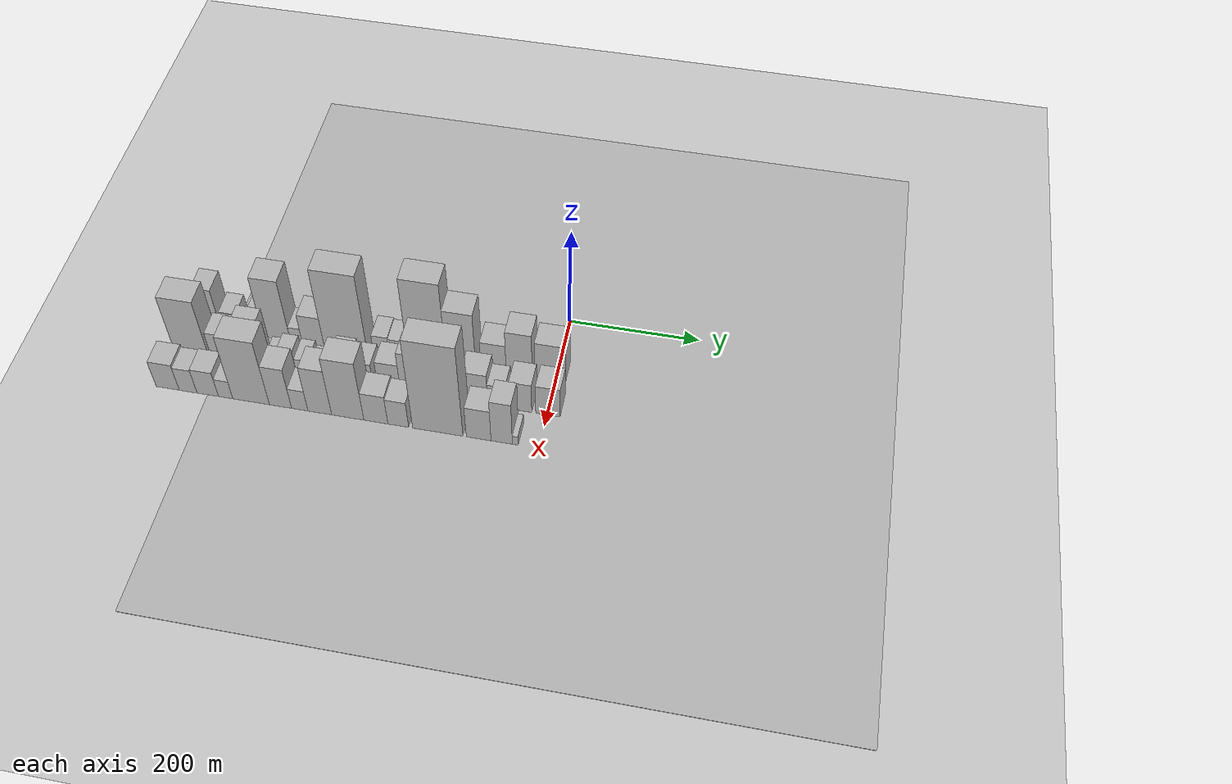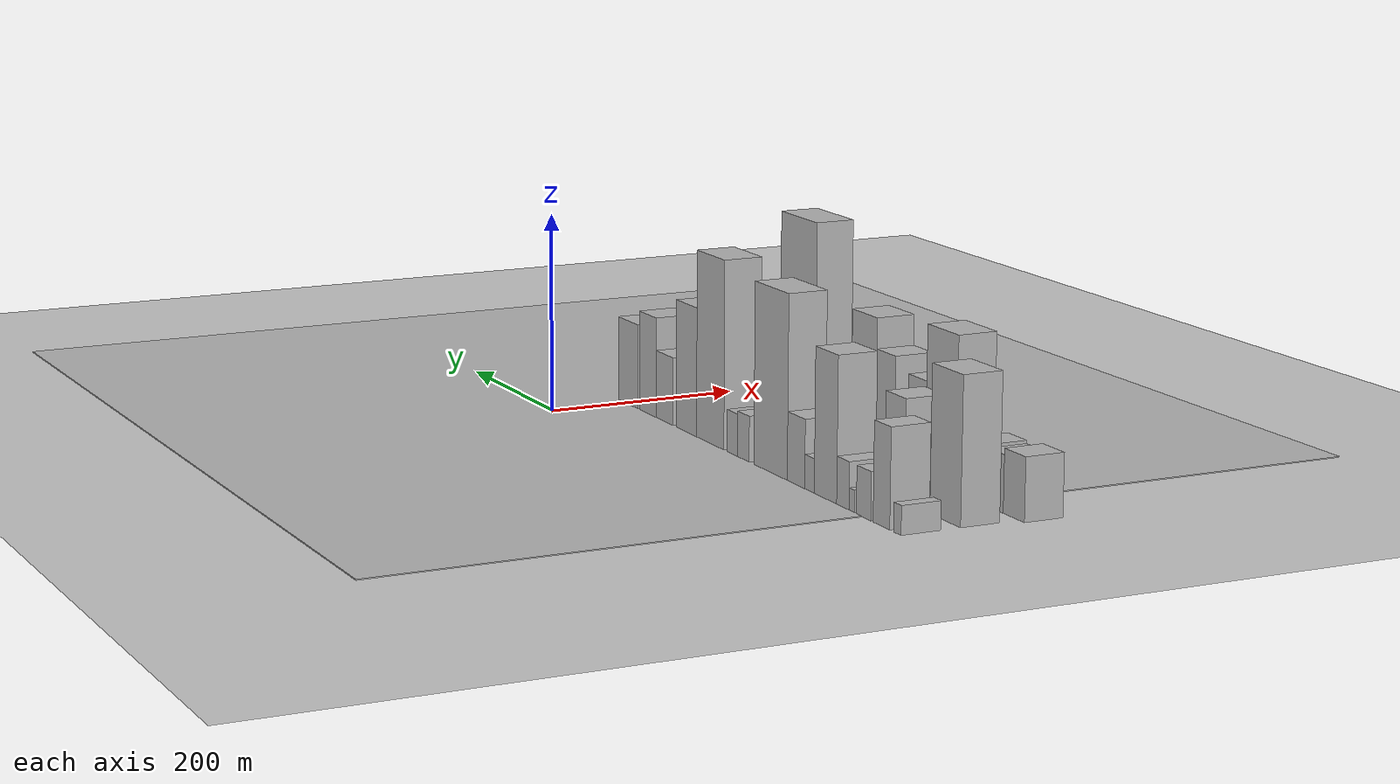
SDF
<sdf version="1.6">
 <world name="default">
  <include><name>ground_plane_1</name><uri>model://HANNAS_ground_plane</uri></include>
  <include>
   <name>ground_plane_2</name>
   <uri>model://HANNAS_ground_plane</uri>
   <pose>100 0 0  0 0 0</pose>
  </include>
  <model name="building_1">
   <static>1</static>
   <pose>100.0000 -564.4238 0 0.000000 0.000000 0.000000</pose>
   <link name="link">
    <pose>0 0 13.50 0 0 0</pose>
    <collision name="collision"><geometry><box><size>40.0000 13.1523 27.0000</size></box></geometry></collision>
    <visual name="visual">
     <cast_shadows>0</cast_shadows>
     <geometry><box><size>40.0000 13.1523 27.0000</size></box></geometry>
     <material>
      <script>
       <uri>model://HANNAS_wall/materials/scripts</uri>
       <uri>model://HANNAS_wall/materials/textures</uri>
       <name>vrc/HANNAS_wall</name>
      </script>
     </material>
    </visual>
   </link>
  </model>
  <model name="building_2">
   <static>1</static>
   <pose>100.0000 -535.8039 0 0.000000 0.000000 0.000000</pose>
   <link name="link">
    <pose>0 0 46.50 0 0 0</pose>
    <collision name="collision"><geometry><box><size>40.0000 30.0876 93.0000</size></box></geometry></collision>
    <visual name="visual">
     <cast_shadows>0</cast_shadows>
     <geometry><box><size>40.0000 30.0876 93.0000</size></box></geometry>
     <material>
      <script>
       <uri>model://HANNAS_wall/materials/scripts</uri>
       <uri>model://HANNAS_wall/materials/textures</uri>
       <name>vrc/HANNAS_wall</name>
      </script>
     </material>
    </visual>
   </link>
  </model>
  <model name="building_3">
   <static>1</static>
   <pose>100.0000 -503.4080 0 0.000000 0.000000 0.000000</pose>
   <link name="link">
    <pose>0 0 22.50 0 0 0</pose>
    <collision name="collision"><geometry><box><size>40.0000 26.7042 45.0000</size></box></geometry></collision>
    <visual name="visual">
     <cast_shadows>0</cast_shadows>
     <geometry><box><size>40.0000 26.7042 45.0000</size></box></geometry>
     <material>
      <script>
       <uri>model://HANNAS_wall/materials/scripts</uri>
       <uri>model://HANNAS_wall/materials/textures</uri>
       <name>vrc/HANNAS_wall</name>
      </script>
     </material>
    </visual>
   </link>
  </model>
  <model name="building_4">
   <static>1</static>
   <pose>100.0000 -481.3256 0 0.000000 0.000000 0.000000</pose>
   <link name="link">
    <pose>0 0 10.50 0 0 0</pose>
    <collision name="collision"><geometry><box><size>40.0000 9.4607 21.0000</size></box></geometry></collision>
    <visual name="visual">
     <cast_shadows>0</cast_shadows>
     <geometry><box><size>40.0000 9.4607 21.0000</size></box></geometry>
     <material>
      <script>
       <uri>model://HANNAS_wall/materials/scripts</uri>
       <uri>model://HANNAS_wall/materials/textures</uri>
       <name>vrc/HANNAS_wall</name>
      </script>
     </material>
    </visual>
   </link>
  </model>
  <model name="building_5">
   <static>1</static>
   <pose>100.0000 -464.8763 0 0.000000 0.000000 0.000000</pose>
   <link name="link">
    <pose>0 0 22.50 0 0 0</pose>
    <collision name="collision"><geometry><box><size>40.0000 23.4379 45.0000</size></box></geometry></collision>
    <visual name="visual">
     <cast_shadows>0</cast_shadows>
     <geometry><box><size>40.0000 23.4379 45.0000</size></box></geometry>
     <material>
      <script>
       <uri>model://HANNAS_wall/materials/scripts</uri>
       <uri>model://HANNAS_wall/materials/textures</uri>
       <name>vrc/HANNAS_wall</name>
      </script>
     </material>
    </visual>
   </link>
  </model>
  <model name="building_6">
   <static>1</static>
   <pose>100.0000 -431.7220 0 0.000000 0.000000 0.000000</pose>
   <link name="link">
    <pose>0 0 69.00 0 0 0</pose>
    <collision name="collision"><geometry><box><size>40.0000 42.8707 138.0000</size></box></geometry></collision>
    <visual name="visual">
     <cast_shadows>0</cast_shadows>
     <geometry><box><size>40.0000 42.8707 138.0000</size></box></geometry>
     <material>
      <script>
       <uri>model://HANNAS_wall/materials/scripts</uri>
       <uri>model://HANNAS_wall/materials/textures</uri>
       <name>vrc/HANNAS_wall</name>
      </script>
     </material>
    </visual>
   </link>
  </model>
  <model name="building_7">
   <static>1</static>
   <pose>100.0000 -400.9709 0 0.000000 0.000000 0.000000</pose>
   <link name="link">
    <pose>0 0 16.50 0 0 0</pose>
    <collision name="collision"><geometry><box><size>40.0000 18.6314 33.0000</size></box></geometry></collision>
    <visual name="visual">
     <cast_shadows>0</cast_shadows>
     <geometry><box><size>40.0000 18.6314 33.0000</size></box></geometry>
     <material>
      <script>
       <uri>model://HANNAS_wall/materials/scripts</uri>
       <uri>model://HANNAS_wall/materials/textures</uri>
       <name>vrc/HANNAS_wall</name>
      </script>
     </material>
    </visual>
   </link>
  </model>
  <model name="building_8">
   <static>1</static>
   <pose>100.0000 -374.4194 0 0.000000 0.000000 0.000000</pose>
   <link name="link">
    <pose>0 0 33.00 0 0 0</pose>
    <collision name="collision"><geometry><box><size>40.0000 34.4717 66.0000</size></box></geometry></collision>
    <visual name="visual">
     <cast_shadows>0</cast_shadows>
     <geometry><box><size>40.0000 34.4717 66.0000</size></box></geometry>
     <material>
      <script>
       <uri>model://HANNAS_wall/materials/scripts</uri>
       <uri>model://HANNAS_wall/materials/textures</uri>
       <name>vrc/HANNAS_wall</name>
      </script>
     </material>
    </visual>
   </link>
  </model>
  <model name="building_9">
   <static>1</static>
   <pose>100.0000 -323.2241 0 0.000000 0.000000 0.000000</pose>
   <link name="link">
    <pose>0 0 88.50 0 0 0</pose>
    <collision name="collision"><geometry><box><size>40.0000 67.9188 177.0000</size></box></geometry></collision>
    <visual name="visual">
     <cast_shadows>0</cast_shadows>
     <geometry><box><size>40.0000 67.9188 177.0000</size></box></geometry>
     <material>
      <script>
       <uri>model://HANNAS_wall/materials/scripts</uri>
       <uri>model://HANNAS_wall/materials/textures</uri>
       <name>vrc/HANNAS_wall</name>
      </script>
     </material>
    </visual>
   </link>
  </model>
  <model name="building_10">
   <static>1</static>
   <pose>100.0000 -266.8234 0 0.000000 0.000000 0.000000</pose>
   <link name="link">
    <pose>0 0 22.50 0 0 0</pose>
    <collision name="collision"><geometry><box><size>40.0000 24.8826 45.0000</size></box></geometry></collision>
    <visual name="visual">
     <cast_shadows>0</cast_shadows>
     <geometry><box><size>40.0000 24.8826 45.0000</size></box></geometry>
     <material>
      <script>
       <uri>model://HANNAS_wall/materials/scripts</uri>
       <uri>model://HANNAS_wall/materials/textures</uri>
       <name>vrc/HANNAS_wall</name>
      </script>
     </material>
    </visual>
   </link>
  </model>
  <model name="building_11">
   <static>1</static>
   <pose>100.0000 -243.5627 0 0.000000 0.000000 0.000000</pose>
   <link name="link">
    <pose>0 0 21.00 0 0 0</pose>
    <collision name="collision"><geometry><box><size>40.0000 21.6390 42.0000</size></box></geometry></collision>
    <visual name="visual">
     <cast_shadows>0</cast_shadows>
     <geometry><box><size>40.0000 21.6390 42.0000</size></box></geometry>
     <material>
      <script>
       <uri>model://HANNAS_wall/materials/scripts</uri>
       <uri>model://HANNAS_wall/materials/textures</uri>
       <name>vrc/HANNAS_wall</name>
      </script>
     </material>
    </visual>
   </link>
  </model>
  <model name="building_12">
   <static>1</static>
   <pose>100.0000 -196.0559 0 0.000000 0.000000 0.000000</pose>
   <link name="link">
    <pose>0 0 93.00 0 0 0</pose>
    <collision name="collision"><geometry><box><size>40.0000 59.3746 186.0000</size></box></geometry></collision>
    <visual name="visual">
     <cast_shadows>0</cast_shadows>
     <geometry><box><size>40.0000 59.3746 186.0000</size></box></geometry>
     <material>
      <script>
       <uri>model://HANNAS_wall/materials/scripts</uri>
       <uri>model://HANNAS_wall/materials/textures</uri>
       <name>vrc/HANNAS_wall</name>
      </script>
     </material>
    </visual>
   </link>
  </model>
  <model name="building_13">
   <static>1</static>
   <pose>100.0000 -143.6979 0 0.000000 0.000000 0.000000</pose>
   <link name="link">
    <pose>0 0 64.50 0 0 0</pose>
    <collision name="collision"><geometry><box><size>40.0000 45.3413 129.0000</size></box></geometry></collision>
    <visual name="visual">
     <cast_shadows>0</cast_shadows>
     <geometry><box><size>40.0000 45.3413 129.0000</size></box></geometry>
     <material>
      <script>
       <uri>model://HANNAS_wall/materials/scripts</uri>
       <uri>model://HANNAS_wall/materials/textures</uri>
       <name>vrc/HANNAS_wall</name>
      </script>
     </material>
    </visual>
   </link>
  </model>
  <model name="building_14">
   <static>1</static>
   <pose>100.0000 -93.7879 0 0.000000 0.000000 0.000000</pose>
   <link name="link">
    <pose>0 0 34.50 0 0 0</pose>
    <collision name="collision"><geometry><box><size>40.0000 38.4788 69.0000</size></box></geometry></collision>
    <visual name="visual">
     <cast_shadows>0</cast_shadows>
     <geometry><box><size>40.0000 38.4788 69.0000</size></box></geometry>
     <material>
      <script>
       <uri>model://HANNAS_wall/materials/scripts</uri>
       <uri>model://HANNAS_wall/materials/textures</uri>
       <name>vrc/HANNAS_wall</name>
      </script>
     </material>
    </visual>
   </link>
  </model>
  <model name="building_15">
   <static>1</static>
   <pose>100.0000 -54.8246 0 0.000000 0.000000 0.000000</pose>
   <link name="link">
    <pose>0 0 51.00 0 0 0</pose>
    <collision name="collision"><geometry><box><size>40.0000 39.4477 102.0000</size></box></geometry></collision>
    <visual name="visual">
     <cast_shadows>0</cast_shadows>
     <geometry><box><size>40.0000 39.4477 102.0000</size></box></geometry>
     <material>
      <script>
       <uri>model://HANNAS_wall/materials/scripts</uri>
       <uri>model://HANNAS_wall/materials/textures</uri>
       <name>vrc/HANNAS_wall</name>
      </script>
     </material>
    </visual>
   </link>
  </model>
  <model name="building_16">
   <static>1</static>
   <pose>100.0000 -8.0166 0 0.000000 0.000000 0.000000</pose>
   <link name="link">
    <pose>0 0 43.50 0 0 0</pose>
    <collision name="collision"><geometry><box><size>40.0000 46.1682 87.0000</size></box></geometry></collision>
    <visual name="visual">
     <cast_shadows>0</cast_shadows>
     <geometry><box><size>40.0000 46.1682 87.0000</size></box></geometry>
     <material>
      <script>
       <uri>model://HANNAS_wall/materials/scripts</uri>
       <uri>model://HANNAS_wall/materials/textures</uri>
       <name>vrc/HANNAS_wall</name>
      </script>
     </material>
    </visual>
   </link>
  </model>
  <model name="building_35">
   <static>1</static>
   <pose>160.0000 -544.0280 0 0.000000 0.000000 0.000000</pose>
   <link name="link">
    <pose>0 0 69.00 0 0 0</pose>
    <collision name="collision"><geometry><box><size>40.0000 53.9440 138.0000</size></box></geometry></collision>
    <visual name="visual">
     <cast_shadows>0</cast_shadows>
     <geometry><box><size>40.0000 53.9440 138.0000</size></box></geometry>
     <material>
      <script>
       <uri>model://HANNAS_wall/materials/scripts</uri>
       <uri>model://HANNAS_wall/materials/textures</uri>
       <name>vrc/HANNAS_wall</name>
      </script>
     </material>
    </visual>
   </link>
  </model>
  <model name="building_36">
   <static>1</static>
   <pose>160.0000 -492.4621 0 0.000000 0.000000 0.000000</pose>
   <link name="link">
    <pose>0 0 34.50 0 0 0</pose>
    <collision name="collision"><geometry><box><size>40.0000 41.1879 69.0000</size></box></geometry></collision>
    <visual name="visual">
     <cast_shadows>0</cast_shadows>
     <geometry><box><size>40.0000 41.1879 69.0000</size></box></geometry>
     <material>
      <script>
       <uri>model://HANNAS_wall/materials/scripts</uri>
       <uri>model://HANNAS_wall/materials/textures</uri>
       <name>vrc/HANNAS_wall</name>
      </script>
     </material>
    </visual>
   </link>
  </model>
  <model name="building_37">
   <static>1</static>
   <pose>160.0000 -453.2706 0 0.000000 0.000000 0.000000</pose>
   <link name="link">
    <pose>0 0 48.00 0 0 0</pose>
    <collision name="collision"><geometry><box><size>40.0000 37.1951 96.0000</size></box></geometry></collision>
    <visual name="visual">
     <cast_shadows>0</cast_shadows>
     <geometry><box><size>40.0000 37.1951 96.0000</size></box></geometry>
     <material>
      <script>
       <uri>model://HANNAS_wall/materials/scripts</uri>
       <uri>model://HANNAS_wall/materials/textures</uri>
       <name>vrc/HANNAS_wall</name>
      </script>
     </material>
    </visual>
   </link>
  </model>
  <model name="building_38">
   <static>1</static>
   <pose>160.0000 -417.9296 0 0.000000 0.000000 0.000000</pose>
   <link name="link">
    <pose>0 0 16.50 0 0 0</pose>
    <collision name="collision"><geometry><box><size>40.0000 17.4869 33.0000</size></box></geometry></collision>
    <visual name="visual">
     <cast_shadows>0</cast_shadows>
     <geometry><box><size>40.0000 17.4869 33.0000</size></box></geometry>
     <material>
      <script>
       <uri>model://HANNAS_wall/materials/scripts</uri>
       <uri>model://HANNAS_wall/materials/textures</uri>
       <name>vrc/HANNAS_wall</name>
      </script>
     </material>
    </visual>
   </link>
  </model>
  <model name="building_39">
   <static>1</static>
   <pose>160.0000 -397.1878 0 0.000000 0.000000 0.000000</pose>
   <link name="link">
    <pose>0 0 22.50 0 0 0</pose>
    <collision name="collision"><geometry><box><size>40.0000 23.9967 45.0000</size></box></geometry></collision>
    <visual name="visual">
     <cast_shadows>0</cast_shadows>
     <geometry><box><size>40.0000 23.9967 45.0000</size></box></geometry>
     <material>
      <script>
       <uri>model://HANNAS_wall/materials/scripts</uri>
       <uri>model://HANNAS_wall/materials/textures</uri>
       <name>vrc/HANNAS_wall</name>
      </script>
     </material>
    </visual>
   </link>
  </model>
  <model name="building_40">
   <static>1</static>
   <pose>160.0000 -370.2478 0 0.000000 0.000000 0.000000</pose>
   <link name="link">
    <pose>0 0 19.50 0 0 0</pose>
    <collision name="collision"><geometry><box><size>40.0000 21.8833 39.0000</size></box></geometry></collision>
    <visual name="visual">
     <cast_shadows>0</cast_shadows>
     <geometry><box><size>40.0000 21.8833 39.0000</size></box></geometry>
     <material>
      <script>
       <uri>model://HANNAS_wall/materials/scripts</uri>
       <uri>model://HANNAS_wall/materials/textures</uri>
       <name>vrc/HANNAS_wall</name>
      </script>
     </material>
    </visual>
   </link>
  </model>
  <model name="building_41">
   <static>1</static>
   <pose>160.0000 -346.6804 0 0.000000 0.000000 0.000000</pose>
   <link name="link">
    <pose>0 0 9.00 0 0 0</pose>
    <collision name="collision"><geometry><box><size>40.0000 7.2516 18.0000</size></box></geometry></collision>
    <visual name="visual">
     <cast_shadows>0</cast_shadows>
     <geometry><box><size>40.0000 7.2516 18.0000</size></box></geometry>
     <material>
      <script>
       <uri>model://HANNAS_wall/materials/scripts</uri>
       <uri>model://HANNAS_wall/materials/textures</uri>
       <name>vrc/HANNAS_wall</name>
      </script>
     </material>
    </visual>
   </link>
  </model>
  <model name="building_42">
   <static>1</static>
   <pose>160.0000 -338.0018 0 0.000000 0.000000 0.000000</pose>
   <link name="link">
    <pose>0 0 12.00 0 0 0</pose>
    <collision name="collision"><geometry><box><size>40.0000 10.1056 24.0000</size></box></geometry></collision>
    <visual name="visual">
     <cast_shadows>0</cast_shadows>
     <geometry><box><size>40.0000 10.1056 24.0000</size></box></geometry>
     <material>
      <script>
       <uri>model://HANNAS_wall/materials/scripts</uri>
       <uri>model://HANNAS_wall/materials/textures</uri>
       <name>vrc/HANNAS_wall</name>
      </script>
     </material>
    </visual>
   </link>
  </model>
  <model name="building_43">
   <static>1</static>
   <pose>160.0000 -328.4630 0 0.000000 0.000000 0.000000</pose>
   <link name="link">
    <pose>0 0 9.00 0 0 0</pose>
    <collision name="collision"><geometry><box><size>40.0000 8.9720 18.0000</size></box></geometry></collision>
    <visual name="visual">
     <cast_shadows>0</cast_shadows>
     <geometry><box><size>40.0000 8.9720 18.0000</size></box></geometry>
     <material>
      <script>
       <uri>model://HANNAS_wall/materials/scripts</uri>
       <uri>model://HANNAS_wall/materials/textures</uri>
       <name>vrc/HANNAS_wall</name>
      </script>
     </material>
    </visual>
   </link>
  </model>
  <model name="building_44">
   <static>1</static>
   <pose>160.0000 -308.6225 0 0.000000 0.000000 0.000000</pose>
   <link name="link">
    <pose>0 0 30.00 0 0 0</pose>
    <collision name="collision"><geometry><box><size>40.0000 30.7090 60.0000</size></box></geometry></collision>
    <visual name="visual">
     <cast_shadows>0</cast_shadows>
     <geometry><box><size>40.0000 30.7090 60.0000</size></box></geometry>
     <material>
      <script>
       <uri>model://HANNAS_wall/materials/scripts</uri>
       <uri>model://HANNAS_wall/materials/textures</uri>
       <name>vrc/HANNAS_wall</name>
      </script>
     </material>
    </visual>
   </link>
  </model>
  <model name="building_45">
   <static>1</static>
   <pose>160.0000 -278.1065 0 0.000000 0.000000 0.000000</pose>
   <link name="link">
    <pose>0 0 27.00 0 0 0</pose>
    <collision name="collision"><geometry><box><size>40.0000 30.3230 54.0000</size></box></geometry></collision>
    <visual name="visual">
     <cast_shadows>0</cast_shadows>
     <geometry><box><size>40.0000 30.3230 54.0000</size></box></geometry>
     <material>
      <script>
       <uri>model://HANNAS_wall/materials/scripts</uri>
       <uri>model://HANNAS_wall/materials/textures</uri>
       <name>vrc/HANNAS_wall</name>
      </script>
     </material>
    </visual>
   </link>
  </model>
  <model name="building_46">
   <static>1</static>
   <pose>160.0000 -238.6514 0 0.000000 0.000000 0.000000</pose>
   <link name="link">
    <pose>0 0 31.50 0 0 0</pose>
    <collision name="collision"><geometry><box><size>40.0000 34.5871 63.0000</size></box></geometry></collision>
    <visual name="visual">
     <cast_shadows>0</cast_shadows>
     <geometry><box><size>40.0000 34.5871 63.0000</size></box></geometry>
     <material>
      <script>
       <uri>model://HANNAS_wall/materials/scripts</uri>
       <uri>model://HANNAS_wall/materials/textures</uri>
       <name>vrc/HANNAS_wall</name>
      </script>
     </material>
    </visual>
   </link>
  </model>
  <model name="building_47">
   <static>1</static>
   <pose>160.0000 -206.0805 0 0.000000 0.000000 0.000000</pose>
   <link name="link">
    <pose>0 0 46.50 0 0 0</pose>
    <collision name="collision"><geometry><box><size>40.0000 30.5546 93.0000</size></box></geometry></collision>
    <visual name="visual">
     <cast_shadows>0</cast_shadows>
     <geometry><box><size>40.0000 30.5546 93.0000</size></box></geometry>
     <material>
      <script>
       <uri>model://HANNAS_wall/materials/scripts</uri>
       <uri>model://HANNAS_wall/materials/textures</uri>
       <name>vrc/HANNAS_wall</name>
      </script>
     </material>
    </visual>
   </link>
  </model>
  <model name="building_48">
   <static>1</static>
   <pose>160.0000 -170.4511 0 0.000000 0.000000 0.000000</pose>
   <link name="link">
    <pose>0 0 37.50 0 0 0</pose>
    <collision name="collision"><geometry><box><size>40.0000 40.7042 75.0000</size></box></geometry></collision>
    <visual name="visual">
     <cast_shadows>0</cast_shadows>
     <geometry><box><size>40.0000 40.7042 75.0000</size></box></geometry>
     <material>
      <script>
       <uri>model://HANNAS_wall/materials/scripts</uri>
       <uri>model://HANNAS_wall/materials/textures</uri>
       <name>vrc/HANNAS_wall</name>
      </script>
     </material>
    </visual>
   </link>
  </model>
  <model name="building_49">
   <static>1</static>
   <pose>160.0000 -138.7853 0 0.000000 0.000000 0.000000</pose>
   <link name="link">
    <pose>0 0 22.50 0 0 0</pose>
    <collision name="collision"><geometry><box><size>40.0000 22.6274 45.0000</size></box></geometry></collision>
    <visual name="visual">
     <cast_shadows>0</cast_shadows>
     <geometry><box><size>40.0000 22.6274 45.0000</size></box></geometry>
     <material>
      <script>
       <uri>model://HANNAS_wall/materials/scripts</uri>
       <uri>model://HANNAS_wall/materials/textures</uri>
       <name>vrc/HANNAS_wall</name>
      </script>
     </material>
    </visual>
   </link>
  </model>
  <model name="building_50">
   <static>1</static>
   <pose>160.0000 -108.3952 0 0.000000 0.000000 0.000000</pose>
   <link name="link">
    <pose>0 0 36.00 0 0 0</pose>
    <collision name="collision"><geometry><box><size>40.0000 38.1530 72.0000</size></box></geometry></collision>
    <visual name="visual">
     <cast_shadows>0</cast_shadows>
     <geometry><box><size>40.0000 38.1530 72.0000</size></box></geometry>
     <material>
      <script>
       <uri>model://HANNAS_wall/materials/scripts</uri>
       <uri>model://HANNAS_wall/materials/textures</uri>
       <name>vrc/HANNAS_wall</name>
      </script>
     </material>
    </visual>
   </link>
  </model>
  <model name="building_51">
   <static>1</static>
   <pose>160.0000 -76.0329 0 0.000000 0.000000 0.000000</pose>
   <link name="link">
    <pose>0 0 25.50 0 0 0</pose>
    <collision name="collision"><geometry><box><size>40.0000 26.5715 51.0000</size></box></geometry></collision>
    <visual name="visual">
     <cast_shadows>0</cast_shadows>
     <geometry><box><size>40.0000 26.5715 51.0000</size></box></geometry>
     <material>
      <script>
       <uri>model://HANNAS_wall/materials/scripts</uri>
       <uri>model://HANNAS_wall/materials/textures</uri>
       <name>vrc/HANNAS_wall</name>
      </script>
     </material>
    </visual>
   </link>
  </model>
  <model name="building_52">
   <static>1</static>
   <pose>160.0000 -40.1293 0 0.000000 0.000000 0.000000</pose>
   <link name="link">
    <pose>0 0 33.00 0 0 0</pose>
    <collision name="collision"><geometry><box><size>40.0000 33.2358 66.0000</size></box></geometry></collision>
    <visual name="visual">
     <cast_shadows>0</cast_shadows>
     <geometry><box><size>40.0000 33.2358 66.0000</size></box></geometry>
     <material>
      <script>
       <uri>model://HANNAS_wall/materials/scripts</uri>
       <uri>model://HANNAS_wall/materials/textures</uri>
       <name>vrc/HANNAS_wall</name>
      </script>
     </material>
    </visual>
   </link>
  </model>
  <model name="building_53">
   <static>1</static>
   <pose>160.0000 0.6464 0 0.000000 0.000000 0.000000</pose>
   <link name="link">
    <pose>0 0 33.00 0 0 0</pose>
    <collision name="collision"><geometry><box><size>40.0000 36.3156 66.0000</size></box></geometry></collision>
    <visual name="visual">
     <cast_shadows>0</cast_shadows>
     <geometry><box><size>40.0000 36.3156 66.0000</size></box></geometry>
     <material>
      <script>
       <uri>model://HANNAS_wall/materials/scripts</uri>
       <uri>model://HANNAS_wall/materials/textures</uri>
       <name>vrc/HANNAS_wall</name>
      </script>
     </material>
    </visual>
   </link>
  </model>
  <model name="building_70">
   <static>1</static>
   <pose>220.0000 -562.0154 0 0.000000 0.000000 0.000000</pose>
   <link name="link">
    <pose>0 0 30.00 0 0 0</pose>
    <collision name="collision"><geometry><box><size>40.0000 35.9693 60.0000</size></box></geometry></collision>
    <visual name="visual">
     <cast_shadows>0</cast_shadows>
     <geometry><box><size>40.0000 35.9693 60.0000</size></box></geometry>
     <material>
      <script>
       <uri>model://HANNAS_wall/materials/scripts</uri>
       <uri>model://HANNAS_wall/materials/textures</uri>
       <name>vrc/HANNAS_wall</name>
      </script>
     </material>
    </visual>
   </link>
  </model>
  <model name="building_71">
   <static>1</static>
   <pose>220.0000 -530.2126 0 0.000000 0.000000 0.000000</pose>
   <link name="link">
    <pose>0 0 27.00 0 0 0</pose>
    <collision name="collision"><geometry><box><size>40.0000 27.6362 54.0000</size></box></geometry></collision>
    <visual name="visual">
     <cast_shadows>0</cast_shadows>
     <geometry><box><size>40.0000 27.6362 54.0000</size></box></geometry>
     <material>
      <script>
       <uri>model://HANNAS_wall/materials/scripts</uri>
       <uri>model://HANNAS_wall/materials/textures</uri>
       <name>vrc/HANNAS_wall</name>
      </script>
     </material>
    </visual>
   </link>
  </model>
  <model name="building_72">
   <static>1</static>
   <pose>220.0000 -499.7948 0 0.000000 0.000000 0.000000</pose>
   <link name="link">
    <pose>0 0 28.50 0 0 0</pose>
    <collision name="collision"><geometry><box><size>40.0000 33.1994 57.0000</size></box></geometry></collision>
    <visual name="visual">
     <cast_shadows>0</cast_shadows>
     <geometry><box><size>40.0000 33.1994 57.0000</size></box></geometry>
     <material>
      <script>
       <uri>model://HANNAS_wall/materials/scripts</uri>
       <uri>model://HANNAS_wall/materials/textures</uri>
       <name>vrc/HANNAS_wall</name>
      </script>
     </material>
    </visual>
   </link>
  </model>
  <model name="building_73">
   <static>1</static>
   <pose>220.0000 -472.0316 0 0.000000 0.000000 0.000000</pose>
   <link name="link">
    <pose>0 0 21.00 0 0 0</pose>
    <collision name="collision"><geometry><box><size>40.0000 22.3270 42.0000</size></box></geometry></collision>
    <visual name="visual">
     <cast_shadows>0</cast_shadows>
     <geometry><box><size>40.0000 22.3270 42.0000</size></box></geometry>
     <material>
      <script>
       <uri>model://HANNAS_wall/materials/scripts</uri>
       <uri>model://HANNAS_wall/materials/textures</uri>
       <name>vrc/HANNAS_wall</name>
      </script>
     </material>
    </visual>
   </link>
  </model>
  <model name="building_74">
   <static>1</static>
   <pose>220.0000 -432.7125 0 0.000000 0.000000 0.000000</pose>
   <link name="link">
    <pose>0 0 73.50 0 0 0</pose>
    <collision name="collision"><geometry><box><size>40.0000 56.3112 147.0000</size></box></geometry></collision>
    <visual name="visual">
     <cast_shadows>0</cast_shadows>
     <geometry><box><size>40.0000 56.3112 147.0000</size></box></geometry>
     <material>
      <script>
       <uri>model://HANNAS_wall/materials/scripts</uri>
       <uri>model://HANNAS_wall/materials/textures</uri>
       <name>vrc/HANNAS_wall</name>
      </script>
     </material>
    </visual>
   </link>
  </model>
  <model name="building_75">
   <static>1</static>
   <pose>220.0000 -387.5774 0 0.000000 0.000000 0.000000</pose>
   <link name="link">
    <pose>0 0 46.50 0 0 0</pose>
    <collision name="collision"><geometry><box><size>40.0000 33.9590 93.0000</size></box></geometry></collision>
    <visual name="visual">
     <cast_shadows>0</cast_shadows>
     <geometry><box><size>40.0000 33.9590 93.0000</size></box></geometry>
     <material>
      <script>
       <uri>model://HANNAS_wall/materials/scripts</uri>
       <uri>model://HANNAS_wall/materials/textures</uri>
       <name>vrc/HANNAS_wall</name>
      </script>
     </material>
    </visual>
   </link>
  </model>
  <model name="building_76">
   <static>1</static>
   <pose>220.0000 -358.1683 0 0.000000 0.000000 0.000000</pose>
   <link name="link">
    <pose>0 0 24.00 0 0 0</pose>
    <collision name="collision"><geometry><box><size>40.0000 24.8590 48.0000</size></box></geometry></collision>
    <visual name="visual">
     <cast_shadows>0</cast_shadows>
     <geometry><box><size>40.0000 24.8590 48.0000</size></box></geometry>
     <material>
      <script>
       <uri>model://HANNAS_wall/materials/scripts</uri>
       <uri>model://HANNAS_wall/materials/textures</uri>
       <name>vrc/HANNAS_wall</name>
      </script>
     </material>
    </visual>
   </link>
  </model>
  <model name="building_77">
   <static>1</static>
   <pose>220.0000 -327.6505 0 0.000000 0.000000 0.000000</pose>
   <link name="link">
    <pose>0 0 52.50 0 0 0</pose>
    <collision name="collision"><geometry><box><size>40.0000 36.1767 105.0000</size></box></geometry></collision>
    <visual name="visual">
     <cast_shadows>0</cast_shadows>
     <geometry><box><size>40.0000 36.1767 105.0000</size></box></geometry>
     <material>
      <script>
       <uri>model://HANNAS_wall/materials/scripts</uri>
       <uri>model://HANNAS_wall/materials/textures</uri>
       <name>vrc/HANNAS_wall</name>
      </script>
     </material>
    </visual>
   </link>
  </model>
  <model name="building_78">
   <static>1</static>
   <pose>220.0000 -285.2279 0 0.000000 0.000000 0.000000</pose>
   <link name="link">
    <pose>0 0 67.50 0 0 0</pose>
    <collision name="collision"><geometry><box><size>40.0000 48.6684 135.0000</size></box></geometry></collision>
    <visual name="visual">
     <cast_shadows>0</cast_shadows>
     <geometry><box><size>40.0000 48.6684 135.0000</size></box></geometry>
     <material>
      <script>
       <uri>model://HANNAS_wall/materials/scripts</uri>
       <uri>model://HANNAS_wall/materials/textures</uri>
       <name>vrc/HANNAS_wall</name>
      </script>
     </material>
    </visual>
   </link>
  </model>
  <model name="building_79">
   <static>1</static>
   <pose>220.0000 -242.8008 0 0.000000 0.000000 0.000000</pose>
   <link name="link">
    <pose>0 0 33.00 0 0 0</pose>
    <collision name="collision"><geometry><box><size>40.0000 36.1858 66.0000</size></box></geometry></collision>
    <visual name="visual">
     <cast_shadows>0</cast_shadows>
     <geometry><box><size>40.0000 36.1858 66.0000</size></box></geometry>
     <material>
      <script>
       <uri>model://HANNAS_wall/materials/scripts</uri>
       <uri>model://HANNAS_wall/materials/textures</uri>
       <name>vrc/HANNAS_wall</name>
      </script>
     </material>
    </visual>
   </link>
  </model>
  <model name="building_80">
   <static>1</static>
   <pose>220.0000 -209.1094 0 0.000000 0.000000 0.000000</pose>
   <link name="link">
    <pose>0 0 30.00 0 0 0</pose>
    <collision name="collision"><geometry><box><size>40.0000 31.1971 60.0000</size></box></geometry></collision>
    <visual name="visual">
     <cast_shadows>0</cast_shadows>
     <geometry><box><size>40.0000 31.1971 60.0000</size></box></geometry>
     <material>
      <script>
       <uri>model://HANNAS_wall/materials/scripts</uri>
       <uri>model://HANNAS_wall/materials/textures</uri>
       <name>vrc/HANNAS_wall</name>
      </script>
     </material>
    </visual>
   </link>
  </model>
  <model name="building_81">
   <static>1</static>
   <pose>220.0000 -150.0497 0 0.000000 0.000000 0.000000</pose>
   <link name="link">
    <pose>0 0 103.50 0 0 0</pose>
    <collision name="collision"><geometry><box><size>40.0000 74.9223 207.0000</size></box></geometry></collision>
    <visual name="visual">
     <cast_shadows>0</cast_shadows>
     <geometry><box><size>40.0000 74.9223 207.0000</size></box></geometry>
     <material>
      <script>
       <uri>model://HANNAS_wall/materials/scripts</uri>
       <uri>model://HANNAS_wall/materials/textures</uri>
       <name>vrc/HANNAS_wall</name>
      </script>
     </material>
    </visual>
   </link>
  </model>
  <model name="building_82">
   <static>1</static>
   <pose>220.0000 -89.2965 0 0.000000 0.000000 0.000000</pose>
   <link name="link">
    <pose>0 0 36.00 0 0 0</pose>
    <collision name="collision"><geometry><box><size>40.0000 36.5842 72.0000</size></box></geometry></collision>
    <visual name="visual">
     <cast_shadows>0</cast_shadows>
     <geometry><box><size>40.0000 36.5842 72.0000</size></box></geometry>
     <material>
      <script>
       <uri>model://HANNAS_wall/materials/scripts</uri>
       <uri>model://HANNAS_wall/materials/textures</uri>
       <name>vrc/HANNAS_wall</name>
      </script>
     </material>
    </visual>
   </link>
  </model>
  <model name="building_83">
   <static>1</static>
   <pose>220.0000 -55.2961 0 0.000000 0.000000 0.000000</pose>
   <link name="link">
    <pose>0 0 48.00 0 0 0</pose>
    <collision name="collision"><geometry><box><size>40.0000 31.4167 96.0000</size></box></geometry></collision>
    <visual name="visual">
     <cast_shadows>0</cast_shadows>
     <geometry><box><size>40.0000 31.4167 96.0000</size></box></geometry>
     <material>
      <script>
       <uri>model://HANNAS_wall/materials/scripts</uri>
       <uri>model://HANNAS_wall/materials/textures</uri>
       <name>vrc/HANNAS_wall</name>
      </script>
     </material>
    </visual>
   </link>
  </model>
  <model name="building_84">
   <static>1</static>
   <pose>220.0000 -35.3395 0 0.000000 0.000000 0.000000</pose>
   <link name="link">
    <pose>0 0 10.50 0 0 0</pose>
    <collision name="collision"><geometry><box><size>40.0000 8.4965 21.0000</size></box></geometry></collision>
    <visual name="visual">
     <cast_shadows>0</cast_shadows>
     <geometry><box><size>40.0000 8.4965 21.0000</size></box></geometry>
     <material>
      <script>
       <uri>model://HANNAS_wall/materials/scripts</uri>
       <uri>model://HANNAS_wall/materials/textures</uri>
       <name>vrc/HANNAS_wall</name>
      </script>
     </material>
    </visual>
   </link>
  </model>
 </world>
</sdf>
